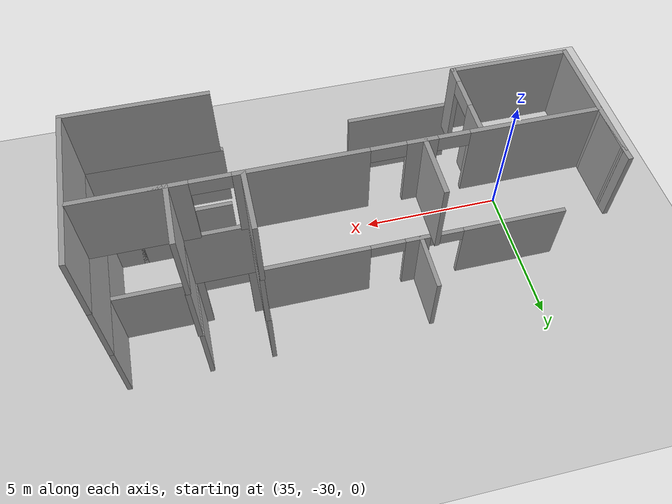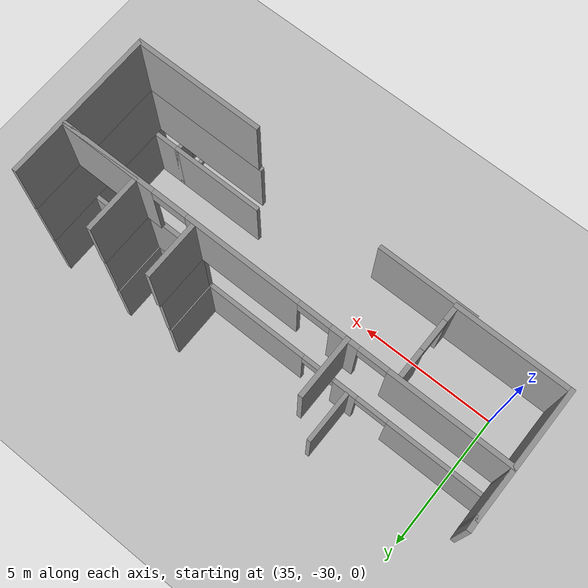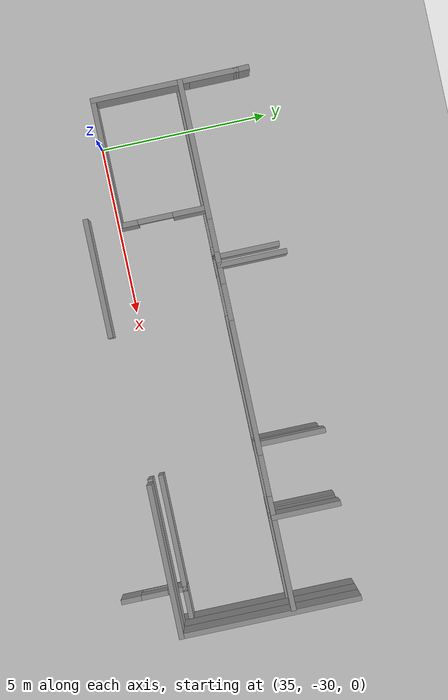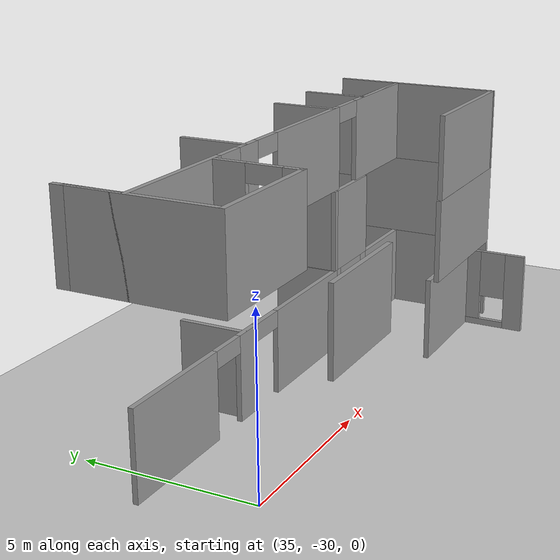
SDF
<sdf version="1.7">
 <world name="default">
  <model name="ground_plane">
   <static>1</static>
   <link name="link">
    <collision name="collision">
     <geometry><plane><normal>0 0 1</normal><size>100 100</size></plane></geometry>
     <surface><friction><ode><mu>100</mu><mu2>50</mu2></ode></friction></surface>
    </collision>
    <visual name="visual">
     <cast_shadows>0</cast_shadows>
     <geometry><plane><normal>0 0 1</normal><size>100 100</size></plane></geometry>
     <material>
      <script><uri>file://media/materials/scripts/gazebo.material</uri><name>Gazebo/Grey</name></script>
     </material>
    </visual>
   </link>
  </model>
  <model name="Anselm_Turmeda">
   <pose>-32.7988 -2.37459 0 0 -0 0</pose>
   <link name="Wall_101">
    <collision name="Wall_101_Collision">
     <geometry><box><size>2 0.15 2.5</size></box></geometry>
     <pose>0 0 1.25 0 -0 0</pose>
    </collision>
    <visual name="Wall_101_Visual">
     <pose>0 0 1.25 0 -0 0</pose>
     <geometry><box><size>2 0.15 2.5</size></box></geometry>
     <material>
      <script><uri>file://media/materials/scripts/gazebo.material</uri><name>Gazebo/Grey</name></script>
      <ambient>1 1 1 1</ambient>
     </material>
     <meta><layer>2</layer></meta>
    </visual>
    <pose>79.3576 -24.0069 5 0 -0 -1.5708</pose>
   </link>
   <link name="Wall_102">
    <collision name="Wall_102_Collision">
     <geometry><box><size>2.75 0.15 2.5</size></box></geometry>
     <pose>0 0 1.25 0 -0 0</pose>
    </collision>
    <visual name="Wall_102_Visual">
     <pose>0 0 1.25 0 -0 0</pose>
     <geometry><box><size>2.75 0.15 2.5</size></box></geometry>
     <material>
      <script><uri>file://media/materials/scripts/gazebo.material</uri><name>Gazebo/Grey</name></script>
      <ambient>1 1 1 1</ambient>
     </material>
     <meta><layer>2</layer></meta>
    </visual>
    <pose>80.6576 -24.9319 5 0 -0 0</pose>
   </link>
   <link name="Wall_103">
    <pose>74.4076 -24.9319 5 0 -0 3.14159</pose>
    <visual name="Wall_103_Visual_0">
     <pose>-5.98304 0 1.25 0 -0 0</pose>
     <geometry><box><size>3.28393 0.15 2.5</size></box></geometry>
     <material>
      <script><uri>file://media/materials/scripts/gazebo.material</uri><name>Gazebo/Grey</name></script>
      <ambient>1 1 1 1</ambient>
     </material>
     <meta><layer>2</layer></meta>
    </visual>
    <collision name="Wall_103_Collision_0">
     <geometry><box><size>3.28393 0.15 2.5</size></box></geometry>
     <pose>-5.98304 0 1.25 0 -0 0</pose>
    </collision>
    <visual name="Wall_103_Visual_1">
     <pose>-1.22901 0 1.25 0 -0 0</pose>
     <geometry><box><size>3.8682 0.15 2.5</size></box></geometry>
     <material>
      <script><uri>file://media/materials/scripts/gazebo.material</uri><name>Gazebo/Grey</name></script>
      <ambient>1 1 1 1</ambient>
     </material>
     <meta><layer>2</layer></meta>
    </visual>
    <collision name="Wall_103_Collision_1">
     <geometry><box><size>3.8682 0.15 2.5</size></box></geometry>
     <pose>-1.22901 0 1.25 0 -0 0</pose>
    </collision>
    <visual name="Wall_103_Visual_2">
     <pose>2.21351 0 1.25 0 -0 0</pose>
     <geometry><box><size>0.917477 0.15 2.5</size></box></geometry>
     <material>
      <script><uri>file://media/materials/scripts/gazebo.material</uri><name>Gazebo/Grey</name></script>
      <ambient>1 1 1 1</ambient>
     </material>
     <meta><layer>2</layer></meta>
    </visual>
    <collision name="Wall_103_Collision_2">
     <geometry><box><size>0.917477 0.15 2.5</size></box></geometry>
     <pose>2.21351 0 1.25 0 -0 0</pose>
    </collision>
    <visual name="Wall_103_Visual_3">
     <pose>5.62 0 1.25 0 -0 0</pose>
     <geometry><box><size>4.00999 0.15 2.5</size></box></geometry>
     <material>
      <script><uri>file://media/materials/scripts/gazebo.material</uri><name>Gazebo/Grey</name></script>
      <ambient>1 1 1 1</ambient>
     </material>
     <meta><layer>2</layer></meta>
    </visual>
    <collision name="Wall_103_Collision_3">
     <geometry><box><size>4.00999 0.15 2.5</size></box></geometry>
     <pose>5.62 0 1.25 0 -0 0</pose>
    </collision>
    <visual name="Wall_103_Visual_4">
     <pose>-3.75209 0 2.25 0 -0 0</pose>
     <geometry><box><size>1.17797 0.15 0.5</size></box></geometry>
     <material>
      <script><uri>file://media/materials/scripts/gazebo.material</uri><name>Gazebo/Grey</name></script>
      <ambient>1 1 1 1</ambient>
     </material>
     <meta><layer>2</layer></meta>
    </visual>
    <collision name="Wall_103_Collision_4">
     <geometry><box><size>1.17797 0.15 0.5</size></box></geometry>
     <pose>-3.75209 0 2.25 0 -0 0</pose>
    </collision>
    <visual name="Wall_103_Visual_5">
     <pose>1.22993 0 2.25 0 -0 0</pose>
     <geometry><box><size>1.04967 0.15 0.5</size></box></geometry>
     <material>
      <script><uri>file://media/materials/scripts/gazebo.material</uri><name>Gazebo/Grey</name></script>
      <ambient>1 1 1 1</ambient>
     </material>
     <meta><layer>2</layer></meta>
    </visual>
    <collision name="Wall_103_Collision_5">
     <geometry><box><size>1.04967 0.15 0.5</size></box></geometry>
     <pose>1.22993 0 2.25 0 -0 0</pose>
    </collision>
    <visual name="Wall_103_Visual_6">
     <pose>3.14363 0 2.25 0 -0 0</pose>
     <geometry><box><size>0.942764 0.15 0.5</size></box></geometry>
     <material>
      <script><uri>file://media/materials/scripts/gazebo.material</uri><name>Gazebo/Grey</name></script>
      <ambient>1 1 1 1</ambient>
     </material>
     <meta><layer>2</layer></meta>
    </visual>
    <collision name="Wall_103_Collision_6">
     <geometry><box><size>0.942764 0.15 0.5</size></box></geometry>
     <pose>3.14363 0 2.25 0 -0 0</pose>
    </collision>
   </link>
   <link name="Wall_104">
    <collision name="Wall_104_Collision">
     <geometry><box><size>1.75 0.15 2.5</size></box></geometry>
     <pose>0 0 1.25 0 -0 0</pose>
    </collision>
    <visual name="Wall_104_Visual">
     <pose>0 0 1.25 0 -0 0</pose>
     <geometry><box><size>1.75 0.15 2.5</size></box></geometry>
     <material>
      <script><uri>file://media/materials/scripts/gazebo.material</uri><name>Gazebo/Grey</name></script>
      <ambient>1 1 1 1</ambient>
     </material>
     <meta><layer>2</layer></meta>
    </visual>
    <pose>66.8576 -24.1319 5 0 -0 1.5708</pose>
   </link>
   <link name="Wall_105">
    <collision name="Wall_105_Collision">
     <geometry><box><size>4.25 0.15 2.5</size></box></geometry>
     <pose>0 0 1.25 0 -0 0</pose>
    </collision>
    <visual name="Wall_105_Visual">
     <pose>0 0 1.25 0 -0 0</pose>
     <geometry><box><size>4.25 0.15 2.5</size></box></geometry>
     <material>
      <script><uri>file://media/materials/scripts/gazebo.material</uri><name>Gazebo/Grey</name></script>
      <ambient>1 1 1 1</ambient>
     </material>
     <meta><layer>2</layer></meta>
    </visual>
    <pose>66.8576 -25.3819 5 0 -0 -1.5708</pose>
   </link>
   <link name="Wall_199">
    <collision name="Wall_199_Collision">
     <geometry><box><size>0.45998 0.15 2.5</size></box></geometry>
     <pose>0 0 1.25 0 -0 0</pose>
    </collision>
    <visual name="Wall_199_Visual">
     <pose>0 0 1.25 0 -0 0</pose>
     <geometry><box><size>0.45998 0.15 2.5</size></box></geometry>
     <material>
      <script><uri>file://media/materials/scripts/gazebo.material</uri><name>Gazebo/Grey</name></script>
      <ambient>1 1 1 1</ambient>
     </material>
     <meta><layer>2</layer></meta>
    </visual>
    <pose>66.8536 -23.177 5 0 -0 -1.54508</pose>
   </link>
   <link name="Wall_210">
    <collision name="Wall_210_Collision">
     <geometry><box><size>3.75 0.15 2.5</size></box></geometry>
     <pose>0 0 1.25 0 -0 0</pose>
    </collision>
    <visual name="Wall_210_Visual">
     <pose>0 0 1.25 0 -0 0</pose>
     <geometry><box><size>3.75 0.15 2.5</size></box></geometry>
     <material>
      <script><uri>file://media/materials/scripts/gazebo.material</uri><name>Gazebo/Grey</name></script>
      <ambient>1 1 1 1</ambient>
     </material>
     <meta><layer>2</layer></meta>
    </visual>
    <pose>68.6576 -27.4319 5 0 -0 0</pose>
   </link>
   <link name="Wall_211">
    <pose>70.4576 -26.2569 5 0 -0 1.5708</pose>
    <visual name="Wall_211_Visual_0">
     <pose>-0.958109 0 1.25 0 -0 0</pose>
     <geometry><box><size>0.583781 0.15 2.5</size></box></geometry>
     <material>
      <script><uri>file://media/materials/scripts/gazebo.material</uri><name>Gazebo/Grey</name></script>
      <ambient>1 1 1 1</ambient>
     </material>
     <meta><layer>2</layer></meta>
    </visual>
    <collision name="Wall_211_Collision_0">
     <geometry><box><size>0.583781 0.15 2.5</size></box></geometry>
     <pose>-0.958109 0 1.25 0 -0 0</pose>
    </collision>
    <visual name="Wall_211_Visual_1">
     <pose>0.795346 0 1.25 0 -0 0</pose>
     <geometry><box><size>0.909308 0.15 2.5</size></box></geometry>
     <material>
      <script><uri>file://media/materials/scripts/gazebo.material</uri><name>Gazebo/Grey</name></script>
      <ambient>1 1 1 1</ambient>
     </material>
     <meta><layer>2</layer></meta>
    </visual>
    <collision name="Wall_211_Collision_1">
     <geometry><box><size>0.909308 0.15 2.5</size></box></geometry>
     <pose>0.795346 0 1.25 0 -0 0</pose>
    </collision>
    <visual name="Wall_211_Visual_2">
     <pose>-0.162764 0 2.25 0 -0 0</pose>
     <geometry><box><size>1.00691 0.15 0.5</size></box></geometry>
     <material>
      <script><uri>file://media/materials/scripts/gazebo.material</uri><name>Gazebo/Grey</name></script>
      <ambient>1 1 1 1</ambient>
     </material>
     <meta><layer>2</layer></meta>
    </visual>
    <collision name="Wall_211_Collision_2">
     <geometry><box><size>1.00691 0.15 0.5</size></box></geometry>
     <pose>-0.162764 0 2.25 0 -0 0</pose>
    </collision>
   </link>
   <link name="Wall_213">
    <collision name="Wall_213_Collision">
     <geometry><box><size>2 0.15 2.5</size></box></geometry>
     <pose>0 0 1.25 0 -0 0</pose>
    </collision>
    <visual name="Wall_213_Visual">
     <pose>0 0 1.25 0 -0 0</pose>
     <geometry><box><size>2 0.15 2.5</size></box></geometry>
     <material>
      <script><uri>file://media/materials/scripts/gazebo.material</uri><name>Gazebo/Grey</name></script>
      <ambient>1 1 1 1</ambient>
     </material>
     <meta><layer>2</layer></meta>
    </visual>
    <pose>72.1169 -23.9965 5 0 -0 -1.5708</pose>
   </link>
   <link name="Wall_215">
    <collision name="Wall_215_Collision">
     <geometry><box><size>2 0.15 2.5</size></box></geometry>
     <pose>0 0 1.25 0 -0 0</pose>
    </collision>
    <visual name="Wall_215_Visual">
     <pose>0 0 1.25 0 -0 0</pose>
     <geometry><box><size>2 0.15 2.5</size></box></geometry>
     <material>
      <script><uri>file://media/materials/scripts/gazebo.material</uri><name>Gazebo/Grey</name></script>
      <ambient>1 1 1 1</ambient>
     </material>
     <meta><layer>2</layer></meta>
    </visual>
    <pose>77.2606 -23.9965 5 0 -0 -1.5708</pose>
   </link>
   <link name="Wall_217">
    <collision name="Wall_217_Collision">
     <geometry><box><size>4.41912 0.15 2.5</size></box></geometry>
     <pose>0 0 1.25 0 -0 0</pose>
    </collision>
    <visual name="Wall_217_Visual">
     <pose>0 0 1.25 0 -0 0</pose>
     <geometry><box><size>4.41912 0.15 2.5</size></box></geometry>
     <material>
      <script><uri>file://media/materials/scripts/gazebo.material</uri><name>Gazebo/Grey</name></script>
      <ambient>1 1 1 1</ambient>
     </material>
     <meta><layer>2</layer></meta>
    </visual>
    <pose>79.9392 -28.1691 5 0 -0 -0.001597</pose>
   </link>
   <link name="Wall_31">
    <collision name="Wall_31_Collision">
     <geometry><box><size>5.25 0.15 2.5</size></box></geometry>
     <pose>0 0 1.25 0 -0 0</pose>
    </collision>
    <visual name="Wall_31_Visual">
     <pose>0 0 1.25 0 -0 0</pose>
     <geometry><box><size>5.25 0.15 2.5</size></box></geometry>
     <material>
      <script><uri>file://media/materials/scripts/gazebo.material</uri><name>Gazebo/Grey</name></script>
      <ambient>1 1 1 1</ambient>
     </material>
     <meta><layer>1</layer></meta>
    </visual>
    <pose>82.0737 -25.6225 2.5 0 -0 1.5708</pose>
   </link>
   <link name="Wall_392">
    <collision name="Wall_392_Collision">
     <geometry><box><size>2.03719 0.15 2.5</size></box></geometry>
     <pose>0 0 1.25 0 -0 0</pose>
    </collision>
    <visual name="Wall_392_Visual">
     <pose>0 0 1.25 0 -0 0</pose>
     <geometry><box><size>2.03719 0.15 2.5</size></box></geometry>
     <material>
      <script><uri>file://media/materials/scripts/gazebo.material</uri><name>Gazebo/Grey</name></script>
      <ambient>1 1 1 1</ambient>
     </material>
     <meta><layer>1</layer></meta>
    </visual>
    <pose>79.382 -24.05 2.5 0 -0 -1.5708</pose>
   </link>
   <link name="Wall_393">
    <collision name="Wall_393_Collision">
     <geometry><box><size>2.25 0.15 2.5</size></box></geometry>
     <pose>0 0 1.25 0 -0 0</pose>
    </collision>
    <visual name="Wall_393_Visual">
     <pose>0 0 1.25 0 -0 0</pose>
     <geometry><box><size>2.25 0.15 2.5</size></box></geometry>
     <material>
      <script><uri>file://media/materials/scripts/gazebo.material</uri><name>Gazebo/Grey</name></script>
      <ambient>1 1 1 1</ambient>
     </material>
     <meta><layer>1</layer></meta>
    </visual>
    <pose>78.332 -24.9936 2.5 0 -0 3.14159</pose>
   </link>
   <link name="Wall_396">
    <collision name="Wall_396_Collision">
     <geometry><box><size>2 0.15 2.5</size></box></geometry>
     <pose>0 0 1.25 0 -0 0</pose>
    </collision>
    <visual name="Wall_396_Visual">
     <pose>0 0 1.25 0 -0 0</pose>
     <geometry><box><size>2 0.15 2.5</size></box></geometry>
     <material>
      <script><uri>file://media/materials/scripts/gazebo.material</uri><name>Gazebo/Grey</name></script>
      <ambient>1 1 1 1</ambient>
     </material>
     <meta><layer>1</layer></meta>
    </visual>
    <pose>77.282 -24.0686 2.5 0 -0 1.5708</pose>
   </link>
   <link name="Wall_398">
    <collision name="Wall_398_Collision">
     <geometry><box><size>2.05 0.15 2.5</size></box></geometry>
     <pose>0 0 1.25 0 -0 0</pose>
    </collision>
    <visual name="Wall_398_Visual">
     <pose>0 0 1.25 0 -0 0</pose>
     <geometry><box><size>2.05 0.15 2.5</size></box></geometry>
     <material>
      <script><uri>file://media/materials/scripts/gazebo.material</uri><name>Gazebo/Grey</name></script>
      <ambient>1 1 1 1</ambient>
     </material>
     <meta><layer>0</layer></meta>
    </visual>
    <pose>79.3452 -24.0423 0 0 -0 -1.5708</pose>
   </link>
   <link name="Wall_400">
    <pose>78.2952 -24.9923 0 0 -0 3.14159</pose>
    <visual name="Wall_400_Visual_0">
     <pose>-0.931341 0 1.25 0 -0 0</pose>
     <geometry><box><size>0.387318 0.15 2.5</size></box></geometry>
     <material>
      <script><uri>file://media/materials/scripts/gazebo.material</uri><name>Gazebo/Grey</name></script>
      <ambient>1 1 1 1</ambient>
     </material>
     <meta><layer>0</layer></meta>
    </visual>
    <collision name="Wall_400_Collision_0">
     <geometry><box><size>0.387318 0.15 2.5</size></box></geometry>
     <pose>-0.931341 0 1.25 0 -0 0</pose>
    </collision>
    <visual name="Wall_400_Visual_1">
     <pose>0.913259 0 1.25 0 -0 0</pose>
     <geometry><box><size>0.423482 0.15 2.5</size></box></geometry>
     <material>
      <script><uri>file://media/materials/scripts/gazebo.material</uri><name>Gazebo/Grey</name></script>
      <ambient>1 1 1 1</ambient>
     </material>
     <meta><layer>0</layer></meta>
    </visual>
    <collision name="Wall_400_Collision_1">
     <geometry><box><size>0.423482 0.15 2.5</size></box></geometry>
     <pose>0.913259 0 1.25 0 -0 0</pose>
    </collision>
    <visual name="Wall_400_Visual_2">
     <pose>-0.018082 0 2.25 0 -0 0</pose>
     <geometry><box><size>1.4392 0.15 0.5</size></box></geometry>
     <material>
      <script><uri>file://media/materials/scripts/gazebo.material</uri><name>Gazebo/Grey</name></script>
      <ambient>1 1 1 1</ambient>
     </material>
     <meta><layer>0</layer></meta>
    </visual>
    <collision name="Wall_400_Collision_2">
     <geometry><box><size>1.4392 0.15 0.5</size></box></geometry>
     <pose>-0.018082 0 2.25 0 -0 0</pose>
    </collision>
   </link>
   <link name="Wall_401">
    <collision name="Wall_401_Collision">
     <geometry><box><size>2 0.15 2.5</size></box></geometry>
     <pose>0 0 1.25 0 -0 0</pose>
    </collision>
    <visual name="Wall_401_Visual">
     <pose>0 0 1.25 0 -0 0</pose>
     <geometry><box><size>2 0.15 2.5</size></box></geometry>
     <material>
      <script><uri>file://media/materials/scripts/gazebo.material</uri><name>Gazebo/Grey</name></script>
      <ambient>1 1 1 1</ambient>
     </material>
     <meta><layer>0</layer></meta>
    </visual>
    <pose>77.2452 -24.0673 0 0 -0 1.5708</pose>
   </link>
   <link name="Wall_422">
    <pose>71.9452 -24.9923 0 0 -0 3.14159</pose>
    <visual name="Wall_422_Visual_0">
     <pose>-3.45962 0 1.25 0 -0 0</pose>
     <geometry><box><size>3.83076 0.15 2.5</size></box></geometry>
     <material>
      <script><uri>file://media/materials/scripts/gazebo.material</uri><name>Gazebo/Grey</name></script>
      <ambient>1 1 1 1</ambient>
     </material>
     <meta><layer>0</layer></meta>
    </visual>
    <collision name="Wall_422_Collision_0">
     <geometry><box><size>3.83076 0.15 2.5</size></box></geometry>
     <pose>-3.45962 0 1.25 0 -0 0</pose>
    </collision>
    <visual name="Wall_422_Visual_1">
     <pose>0.086705 0 1.25 0 -0 0</pose>
     <geometry><box><size>0.871404 0.15 2.5</size></box></geometry>
     <material>
      <script><uri>file://media/materials/scripts/gazebo.material</uri><name>Gazebo/Grey</name></script>
      <ambient>1 1 1 1</ambient>
     </material>
     <meta><layer>0</layer></meta>
    </visual>
    <collision name="Wall_422_Collision_1">
     <geometry><box><size>0.871404 0.15 2.5</size></box></geometry>
     <pose>0.086705 0 1.25 0 -0 0</pose>
    </collision>
    <visual name="Wall_422_Visual_2">
     <pose>3.53227 0 1.25 0 -0 0</pose>
     <geometry><box><size>3.68547 0.15 2.5</size></box></geometry>
     <material>
      <script><uri>file://media/materials/scripts/gazebo.material</uri><name>Gazebo/Grey</name></script>
      <ambient>1 1 1 1</ambient>
     </material>
     <meta><layer>0</layer></meta>
    </visual>
    <collision name="Wall_422_Collision_2">
     <geometry><box><size>3.68547 0.15 2.5</size></box></geometry>
     <pose>3.53227 0 1.25 0 -0 0</pose>
    </collision>
    <visual name="Wall_422_Visual_3">
     <pose>-0.946617 0 2.25 0 -0 0</pose>
     <geometry><box><size>1.19524 0.15 0.5</size></box></geometry>
     <material>
      <script><uri>file://media/materials/scripts/gazebo.material</uri><name>Gazebo/Grey</name></script>
      <ambient>1 1 1 1</ambient>
     </material>
     <meta><layer>0</layer></meta>
    </visual>
    <collision name="Wall_422_Collision_3">
     <geometry><box><size>1.19524 0.15 0.5</size></box></geometry>
     <pose>-0.946617 0 2.25 0 -0 0</pose>
    </collision>
    <visual name="Wall_422_Visual_4">
     <pose>1.10597 0 2.25 0 -0 0</pose>
     <geometry><box><size>1.16712 0.15 0.5</size></box></geometry>
     <material>
      <script><uri>file://media/materials/scripts/gazebo.material</uri><name>Gazebo/Grey</name></script>
      <ambient>1 1 1 1</ambient>
     </material>
     <meta><layer>0</layer></meta>
    </visual>
    <collision name="Wall_422_Collision_4">
     <geometry><box><size>1.16712 0.15 0.5</size></box></geometry>
     <pose>1.10597 0 2.25 0 -0 0</pose>
    </collision>
   </link>
   <link name="Wall_425">
    <collision name="Wall_425_Collision">
     <geometry><box><size>2 0.15 2.5</size></box></geometry>
     <pose>0 0 1.25 0 -0 0</pose>
    </collision>
    <visual name="Wall_425_Visual">
     <pose>0 0 1.25 0 -0 0</pose>
     <geometry><box><size>2 0.15 2.5</size></box></geometry>
     <material>
      <script><uri>file://media/materials/scripts/gazebo.material</uri><name>Gazebo/Grey</name></script>
      <ambient>1 1 1 1</ambient>
     </material>
     <meta><layer>0</layer></meta>
    </visual>
    <pose>71.7348 -24.0463 0 0 -0 1.5708</pose>
   </link>
   <link name="Wall_427">
    <collision name="Wall_427_Collision">
     <geometry><box><size>2.75 0.15 2.5</size></box></geometry>
     <pose>0 0 1.25 0 -0 0</pose>
    </collision>
    <visual name="Wall_427_Visual">
     <pose>0 0 1.25 0 -0 0</pose>
     <geometry><box><size>2.75 0.15 2.5</size></box></geometry>
     <material>
      <script><uri>file://media/materials/scripts/gazebo.material</uri><name>Gazebo/Grey</name></script>
      <ambient>1 1 1 1</ambient>
     </material>
     <meta><layer>0</layer></meta>
    </visual>
    <pose>80.6452 -24.9923 0 0 -0 0</pose>
   </link>
   <link name="Wall_430">
    <pose>81.1058 -28.8331 0 0 -0 1.5708</pose>
    <visual name="Wall_430_Visual_0">
     <pose>-0.695032 0 1.25 0 -0 0</pose>
     <geometry><box><size>0.609935 0.15 2.5</size></box></geometry>
     <material>
      <script><uri>file://media/materials/scripts/gazebo.material</uri><name>Gazebo/Grey</name></script>
      <ambient>1 1 1 1</ambient>
     </material>
     <meta><layer>0</layer></meta>
    </visual>
    <collision name="Wall_430_Collision_0">
     <geometry><box><size>0.609935 0.15 2.5</size></box></geometry>
     <pose>-0.695032 0 1.25 0 -0 0</pose>
    </collision>
    <visual name="Wall_430_Visual_1">
     <pose>0.304968 0 0.1 0 -0 0</pose>
     <geometry><box><size>1.39007 0.15 0.2</size></box></geometry>
     <material>
      <script><uri>file://media/materials/scripts/gazebo.material</uri><name>Gazebo/Grey</name></script>
      <ambient>1 1 1 1</ambient>
     </material>
     <meta><layer>0</layer></meta>
    </visual>
    <collision name="Wall_430_Collision_1">
     <geometry><box><size>1.39007 0.15 0.2</size></box></geometry>
     <pose>0.304968 0 0.1 0 -0 0</pose>
    </collision>
    <visual name="Wall_430_Visual_2">
     <pose>0.704968 0 1.35 0 -0 0</pose>
     <geometry><box><size>0.590065 0.15 2.3</size></box></geometry>
     <material>
      <script><uri>file://media/materials/scripts/gazebo.material</uri><name>Gazebo/Grey</name></script>
      <ambient>1 1 1 1</ambient>
     </material>
     <meta><layer>0</layer></meta>
    </visual>
    <collision name="Wall_430_Collision_2">
     <geometry><box><size>0.590065 0.15 2.3</size></box></geometry>
     <pose>0.704968 0 1.35 0 -0 0</pose>
    </collision>
    <visual name="Wall_430_Visual_3">
     <pose>0.009935 0 1.75 0 -0 0</pose>
     <geometry><box><size>0.8 0.15 1.5</size></box></geometry>
     <material>
      <script><uri>file://media/materials/scripts/gazebo.material</uri><name>Gazebo/Grey</name></script>
      <ambient>1 1 1 1</ambient>
     </material>
     <meta><layer>0</layer></meta>
    </visual>
    <collision name="Wall_430_Collision_3">
     <geometry><box><size>0.8 0.15 1.5</size></box></geometry>
     <pose>0.009935 0 1.75 0 -0 0</pose>
    </collision>
   </link>
   <link name="Wall_431">
    <collision name="Wall_431_Collision">
     <geometry><box><size>3.5 0.15 2.5</size></box></geometry>
     <pose>0 0 1.25 0 -0 0</pose>
    </collision>
    <visual name="Wall_431_Visual">
     <pose>0 0 1.25 0 -0 0</pose>
     <geometry><box><size>3.5 0.15 2.5</size></box></geometry>
     <material>
      <script><uri>file://media/materials/scripts/gazebo.material</uri><name>Gazebo/Grey</name></script>
      <ambient>1 1 1 1</ambient>
     </material>
     <meta><layer>0</layer></meta>
    </visual>
    <pose>79.4308 -27.9081 0 0 -0 3.14159</pose>
   </link>
   <link name="Wall_434">
    <collision name="Wall_434_Collision">
     <geometry><box><size>1 0.15 2.5</size></box></geometry>
     <pose>0 0 1.25 0 -0 0</pose>
    </collision>
    <visual name="Wall_434_Visual">
     <pose>0 0 1.25 0 -0 0</pose>
     <geometry><box><size>1 0.15 2.5</size></box></geometry>
     <material>
      <script><uri>file://media/materials/scripts/gazebo.material</uri><name>Gazebo/Grey</name></script>
      <ambient>1 1 1 1</ambient>
     </material>
     <meta><layer>0</layer></meta>
    </visual>
    <pose>81.5308 -27.9081 0 0 -0 0</pose>
   </link>
   <link name="Wall_53">
    <collision name="Wall_53_Collision">
     <geometry><box><size>5.25 0.15 2.5</size></box></geometry>
     <pose>0 0 1.25 0 -0 0</pose>
    </collision>
    <visual name="Wall_53_Visual">
     <pose>0 0 1.25 0 -0 0</pose>
     <geometry><box><size>5.25 0.15 2.5</size></box></geometry>
     <material>
      <script><uri>file://media/materials/scripts/gazebo.material</uri><name>Gazebo/Grey</name></script>
      <ambient>1 1 1 1</ambient>
     </material>
     <meta><layer>2</layer></meta>
    </visual>
    <pose>82.0737 -25.6225 5 0 -0 1.5708</pose>
   </link>
   <link name="Wall_6">
    <collision name="Wall_6_Collision">
     <geometry><box><size>5.25 0.15 2.5</size></box></geometry>
     <pose>0 0 1.25 0 -0 0</pose>
    </collision>
    <visual name="Wall_6_Visual">
     <pose>0 0 1.25 0 -0 0</pose>
     <geometry><box><size>5.25 0.15 2.5</size></box></geometry>
     <material>
      <script><uri>file://media/materials/scripts/gazebo.material</uri><name>Gazebo/Grey</name></script>
      <ambient>1 1 1 1</ambient>
     </material>
     <meta><layer>0</layer></meta>
    </visual>
    <pose>82.0737 -25.6225 0 0 -0 1.5708</pose>
   </link>
   <link name="Wall_70">
    <collision name="Wall_70_Collision">
     <geometry><box><size>4.5 0.15 2.5</size></box></geometry>
     <pose>0 0 1.25 0 -0 0</pose>
    </collision>
    <visual name="Wall_70_Visual">
     <pose>0 0 1.25 0 -0 0</pose>
     <geometry><box><size>4.5 0.15 2.5</size></box></geometry>
     <material>
      <script><uri>file://media/materials/scripts/gazebo.material</uri><name>Gazebo/Grey</name></script>
      <ambient>1 1 1 1</ambient>
     </material>
     <meta><layer>1</layer></meta>
    </visual>
    <pose>79.8987 -28.1725 2.5 0 -0 3.14159</pose>
   </link>
   <link name="Wall_76">
    <collision name="Wall_76_Collision">
     <geometry><box><size>3.5 0.15 2.5</size></box></geometry>
     <pose>0 0 1.25 0 -0 0</pose>
    </collision>
    <visual name="Wall_76_Visual">
     <pose>0 0 1.25 0 -0 0</pose>
     <geometry><box><size>3.5 0.15 2.5</size></box></geometry>
     <material>
      <script><uri>file://media/materials/scripts/gazebo.material</uri><name>Gazebo/Grey</name></script>
      <ambient>1 1 1 1</ambient>
     </material>
     <meta><layer>1</layer></meta>
    </visual>
    <pose>71.6987 -28.4225 2.5 0 -0 3.14159</pose>
   </link>
   <static>1</static>
  </model>
 </world>
</sdf>
